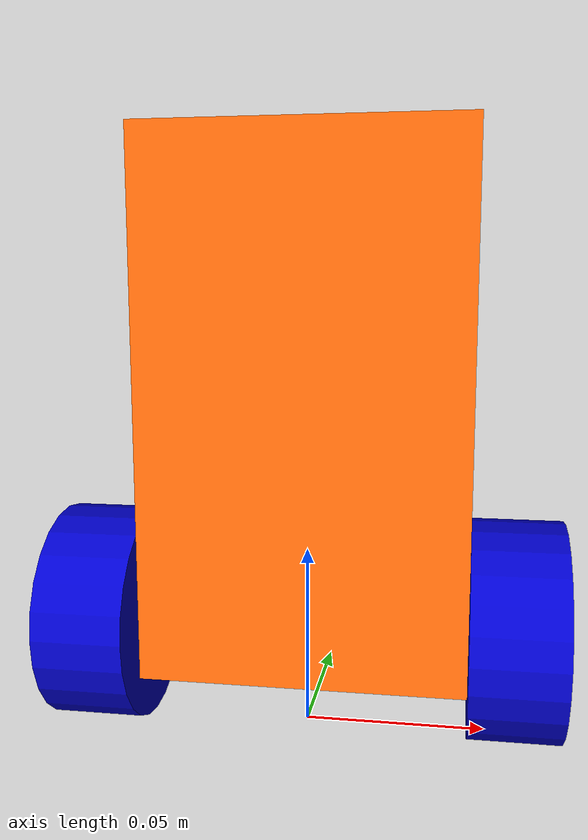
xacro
<?xml version="1.0"?>
<!-- Two Wheeled Inverted Pendulum -->
<robot name="twip" xmlns:xacro="http://www.ros.org/wiki/xacro">

    <!-- Constants for robot dimensions -->
    <xacro:property name="PI" value="3.1415926535897931"/>
    <xacro:property name="bodyMass" value="3" /> <!-- arbitrary value for mass, will fix once system is built -->
    <xacro:property name="bodyWidth" value="0.09" /> <!-- width between the wheels -->
    <xacro:property name="bodyHeight" value=".15" /> <!-- height of main body -->
    <xacro:property name="bodyDepth" value=".03" /> <!-- depth of the main body -->
    <xacro:property name="wheelOffset" value="0.015" />
    <xacro:property name="wheelRadius" value=".03" /> <!-- radius of the wheel -->
    <xacro:property name="wheelWidth" value=".025" /> <!-- width of the wheel -->
    <xacro:property name="wheelMass" value=".5" /> <!-- arbitrary value for mass, will fix once system is built -->
    <!-- I don't think I will need this -->
    <xacro:property name="axel_offset" value="0.05" /> <!-- Space btw top of beam and the each joint -->

    <!-- Import all Gazebo-customization elements, including Gazebo colors -->
    <xacro:include filename="$(find twip_description)/urdf/TWIP.gazebo" />
    <!-- Import Rviz colors -->
    <xacro:include filename="$(find twip_description)/urdf/materials.xacro" />

    <!-- Main body link -->
    <link name="body">
        <collision>
            <origin xyz="0 0 0" rpy="0 0 0"/>
            <geometry>
                <box size="${bodyWidth} ${bodyDepth} ${bodyHeight}"/>
            </geometry>
        </collision>

        <visual>
            <origin xyz="0 0 0" rpy="0 0 0"/>
            <geometry>
                <box size="${bodyWidth} ${bodyDepth} ${bodyHeight}"/>
            </geometry>
            <material name="orange"/>
        </visual>

        <inertial>
            <origin xyz="${bodyWidth/2} ${bodyDepth/2} ${bodyHeight/2}" rpy="0 0 0"/>
            <mass value="${bodyMass}"/>
            <!-- Assuming uniform cuboid -->
            <inertia
                ixx="${bodyMass/12.0 * (bodyDepth*bodyDepth   + bodyHeight*bodyHeight)}" ixy="0" ixz="0"
                iyy="${bodyMass/12.0 * (bodyHeight*bodyHeight + bodyWidth*bodyWidth)}"   iyz="0"
                izz="${bodyMass/12.0 * (bodyWidth*bodyWidth   + bodyDepth*bodyDepth)}"
            />
        </inertial>
    </link>

    <xacro:macro name="wheel" params="side">
        <link name="wheel_${side}">
            <collision>
                <origin xyz="0 0 0" rpy="0 0 0"/>
                <geometry>
                    <cylinder radius="${wheelRadius}"  length="${wheelWidth}"/>
                </geometry>
            </collision>

            <visual>
                <origin xyz="0 0 0" rpy="0 0 0"/>
                <geometry>
                    <cylinder radius="${wheelRadius}"  length="${wheelWidth}"/>
                </geometry>
                <material name="blue"/>
            </visual>

            <inertial>
                <origin xyz="0 0 0" rpy="0 0 0"/>
                <mass value="${wheelMass}"/>
                <!-- Assuming uniform cylinder -->
                <inertia
                    ixx="${wheelMass*(3*wheelRadius*wheelRadius + wheelWidth*wheelWidth)/12}" ixy="0" ixz="0"
                    iyy="${wheelMass*(3*wheelRadius*wheelRadius + wheelWidth*wheelWidth)/12}" iyz="0"
                    izz="${wheelMass*wheelRadius*wheelRadius/2}"
                />
            </inertial>
        </link>

        <joint name="${side}_wheel_joint" type="continuous">
            <parent link="body"/>
            <child link="wheel_${side}"/>
            <!-- place the wheels on the correct side -->
            <xacro:if value="${side == 'left'}">
                <origin xyz="${-(bodyWidth + wheelWidth)/2} 0 ${-bodyHeight/2 + wheelOffset}" rpy="0 ${-PI/2} 0"/>
            </xacro:if>
            <xacro:if value="${side == 'right'}">
                <origin xyz="${(bodyWidth + wheelWidth)/2} 0 ${-bodyHeight/2 + wheelOffset}" rpy="0 ${-PI/2} 0"/>
            </xacro:if>
            <axis xyz="0 0 1"/>
        </joint>

        <transmission name="${side}_wheel_transmission">
            <type>transmission_interface/SimpleTransmission</type>
            <joint name="${side}_wheel_joint">
                <hardwareInterface>hardware_interface/EffortJointInterface</hardwareInterface>
            </joint>
            <actuator name="${side}_motor">
                <hardwareInterface>hardware_interface/EffortJointInterface</hardwareInterface>
                <mechanicalReduction>1</mechanicalReduction>
            </actuator>
        </transmission>
    </xacro:macro>

    <xacro:wheel side="left"/>
    <xacro:wheel side="right"/>

    <link name="base_link"/>

    <joint name="base_link_to_chassis" type="fixed">
        <parent link="base_link"/>
        <child link="body"/>
        <origin xyz="0 0 ${bodyHeight/2 + wheelRadius - wheelOffset}" rpy="0 0 0"/>
    </joint>

</robot>

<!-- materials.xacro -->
<!-- Taken from rrbot_description at http://gazebosim.org/tutorials/?tut=ros_urdf -->
<robot>

  <material name="black">
    <color rgba="0.0 0.0 0.0 1.0"/>
  </material>

  <material name="blue">
    <color rgba="0.0 0.0 0.8 1.0"/>
  </material>

  <material name="green">
    <color rgba="0.0 0.8 0.0 1.0"/>
  </material>

  <material name="grey">
    <color rgba="0.2 0.2 0.2 1.0"/>
  </material>

  <material name="orange">
    <color rgba="${255/255} ${108/255} ${10/255} 1.0"/>
  </material>

  <material name="brown">
    <color rgba="${222/255} ${207/255} ${195/255} 1.0"/>
  </material>

  <material name="red">
    <color rgba="0.8 0.0 0.0 1.0"/>
  </material>

  <material name="white">
    <color rgba="1.0 1.0 1.0 1.0"/>
  </material>

</robot>
